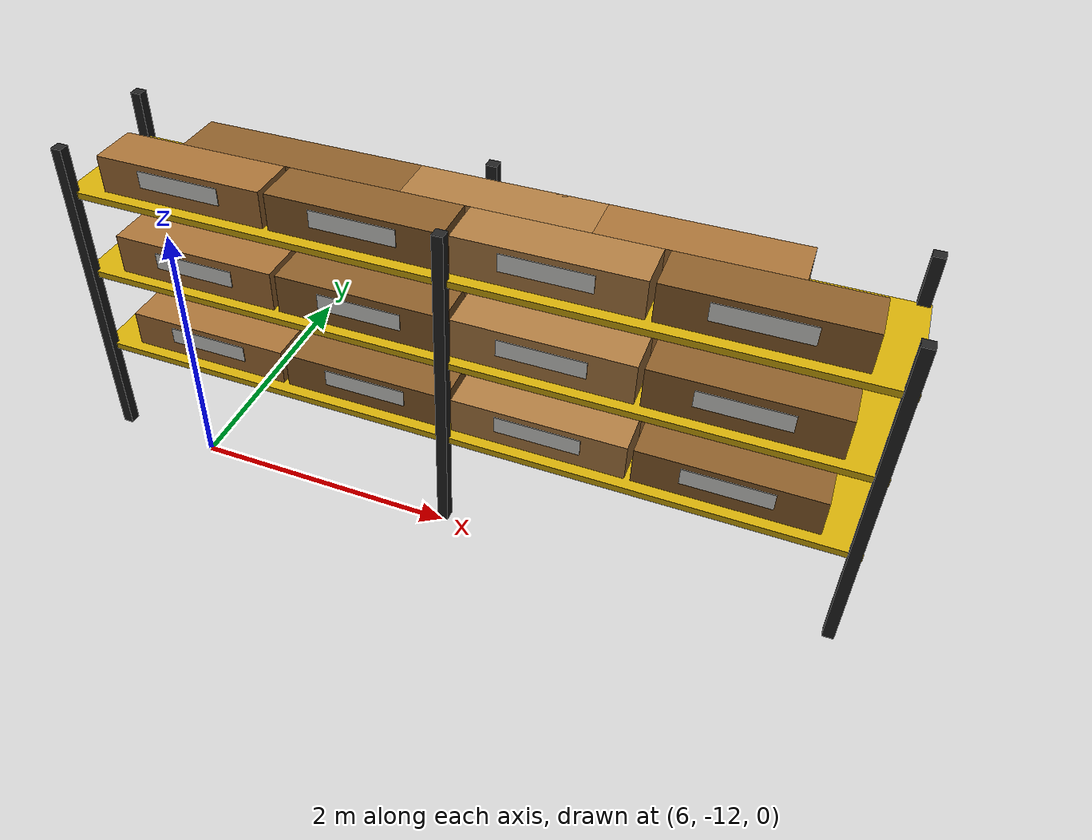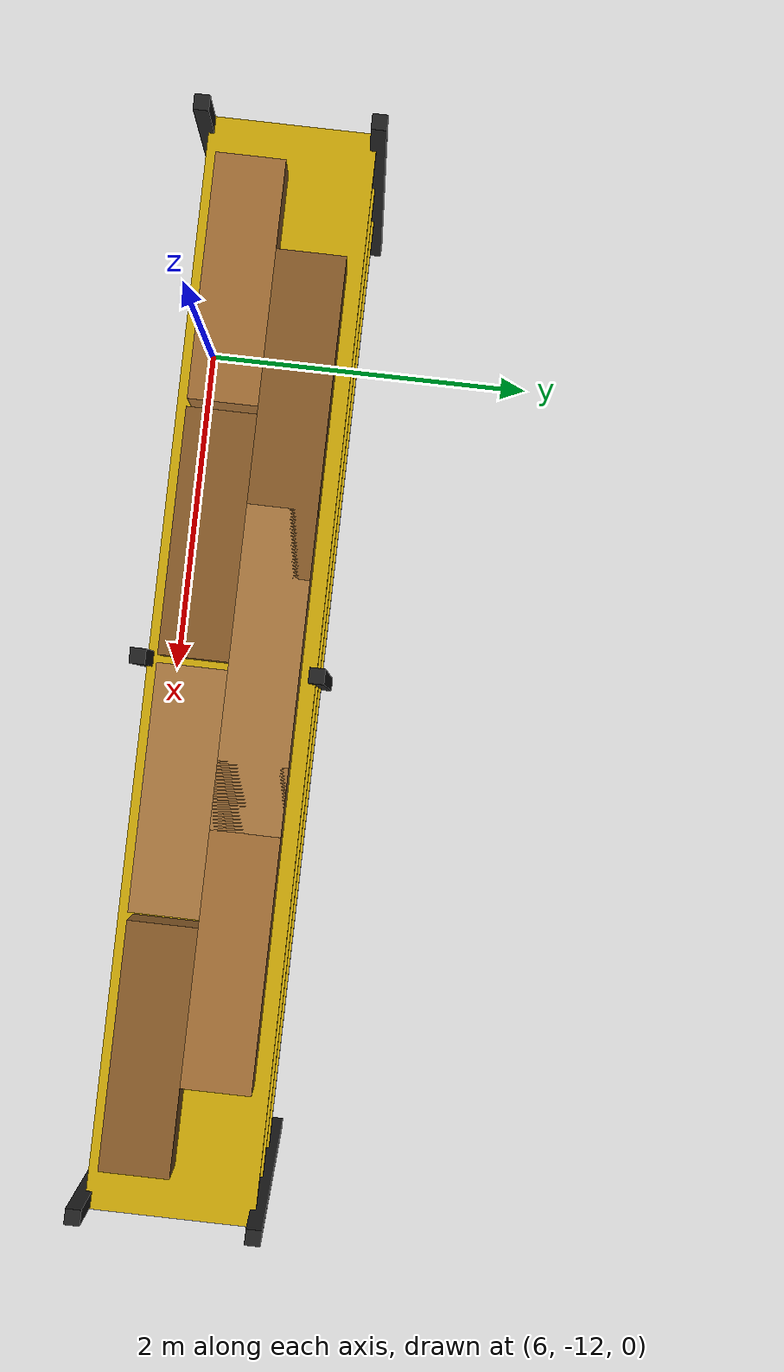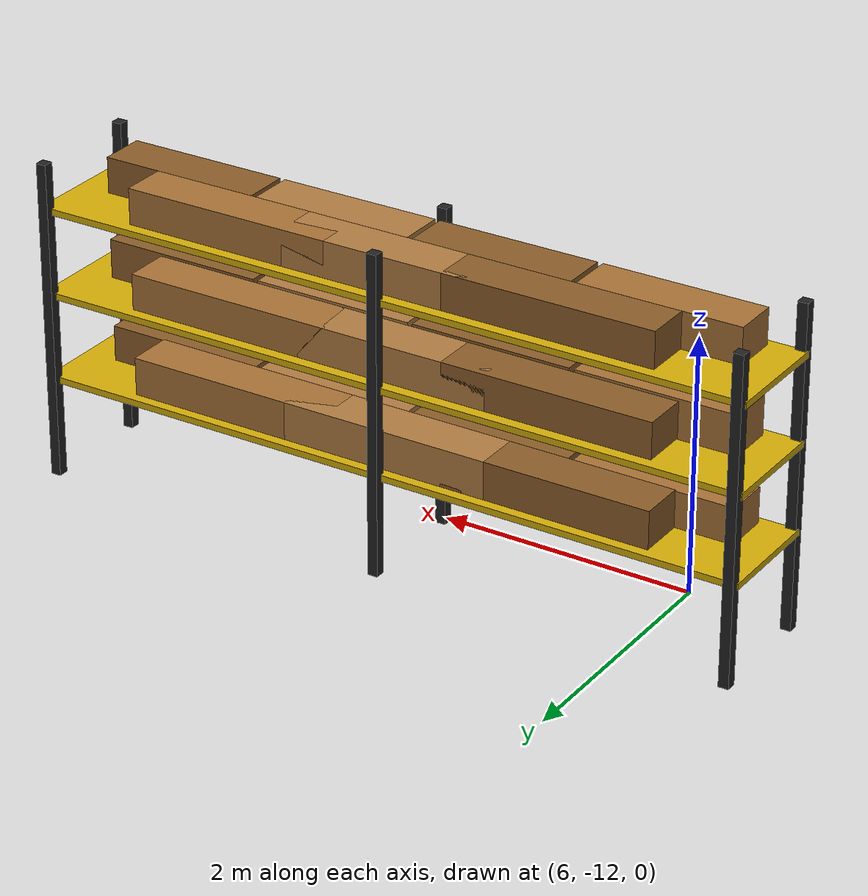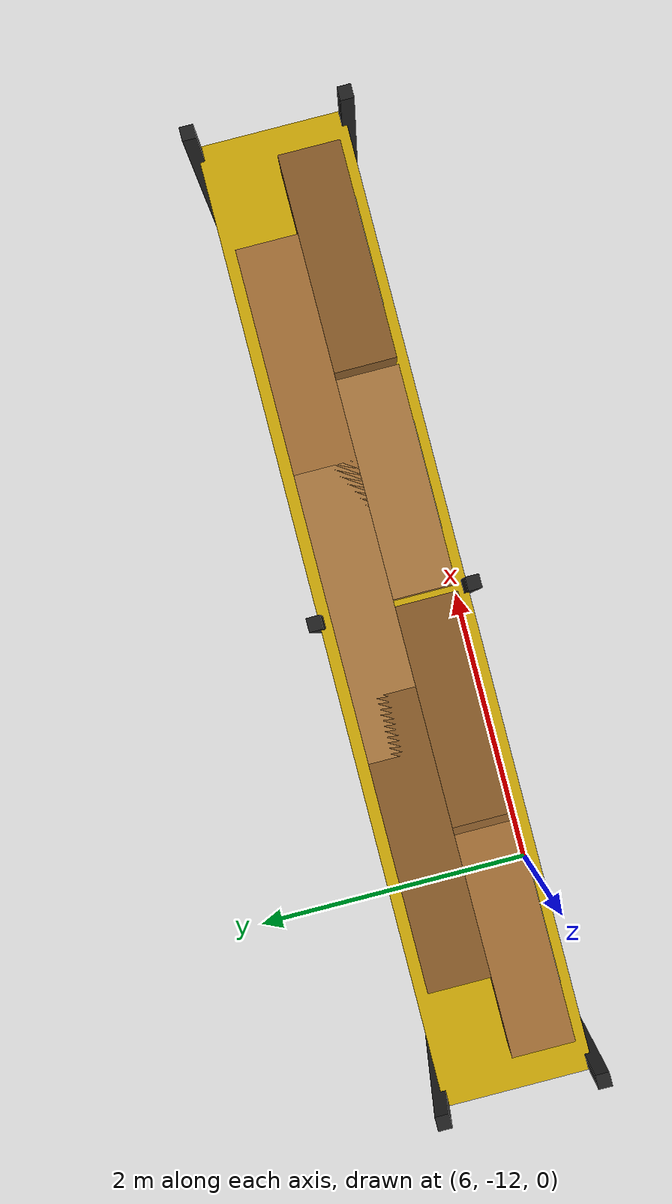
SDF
<sdf version="1.6">
 <world name="aws_industrial_warehouse">
  <model name="shelf_S5">
   <static>true</static>
   <pose>8 -11.5 0 0 0 0</pose>
   <link name="pFL">
    <pose>-2.8 -0.45 1.25 0 0 0</pose>
    <collision name="c">
     <geometry><box><size>0.08 0.08 2.5</size></box></geometry>
     <surface><friction><ode><mu>1.0</mu><mu2>1.0</mu2></ode></friction></surface>
    </collision>
    <visual name="v">
     <geometry><box><size>0.08 0.08 2.5</size></box></geometry>
     <material><ambient>0.10 0.10 0.10 1</ambient><diffuse>0.13 0.13 0.13 1</diffuse></material>
    </visual>
   </link>
   <link name="pBL">
    <pose>-2.8 0.45 1.25 0 0 0</pose>
    <collision name="c">
     <geometry><box><size>0.08 0.08 2.5</size></box></geometry>
     <surface><friction><ode><mu>1.0</mu><mu2>1.0</mu2></ode></friction></surface>
    </collision>
    <visual name="v">
     <geometry><box><size>0.08 0.08 2.5</size></box></geometry>
     <material><ambient>0.10 0.10 0.10 1</ambient><diffuse>0.13 0.13 0.13 1</diffuse></material>
    </visual>
   </link>
   <link name="pFC">
    <pose>0.0 -0.45 1.25 0 0 0</pose>
    <collision name="c">
     <geometry><box><size>0.08 0.08 2.5</size></box></geometry>
     <surface><friction><ode><mu>1.0</mu><mu2>1.0</mu2></ode></friction></surface>
    </collision>
    <visual name="v">
     <geometry><box><size>0.08 0.08 2.5</size></box></geometry>
     <material><ambient>0.10 0.10 0.10 1</ambient><diffuse>0.13 0.13 0.13 1</diffuse></material>
    </visual>
   </link>
   <link name="pBC">
    <pose>0.0 0.45 1.25 0 0 0</pose>
    <collision name="c">
     <geometry><box><size>0.08 0.08 2.5</size></box></geometry>
     <surface><friction><ode><mu>1.0</mu><mu2>1.0</mu2></ode></friction></surface>
    </collision>
    <visual name="v">
     <geometry><box><size>0.08 0.08 2.5</size></box></geometry>
     <material><ambient>0.10 0.10 0.10 1</ambient><diffuse>0.13 0.13 0.13 1</diffuse></material>
    </visual>
   </link>
   <link name="pFR">
    <pose>2.8 -0.45 1.25 0 0 0</pose>
    <collision name="c">
     <geometry><box><size>0.08 0.08 2.5</size></box></geometry>
     <surface><friction><ode><mu>1.0</mu><mu2>1.0</mu2></ode></friction></surface>
    </collision>
    <visual name="v">
     <geometry><box><size>0.08 0.08 2.5</size></box></geometry>
     <material><ambient>0.10 0.10 0.10 1</ambient><diffuse>0.13 0.13 0.13 1</diffuse></material>
    </visual>
   </link>
   <link name="pBR">
    <pose>2.8 0.45 1.25 0 0 0</pose>
    <collision name="c">
     <geometry><box><size>0.08 0.08 2.5</size></box></geometry>
     <surface><friction><ode><mu>1.0</mu><mu2>1.0</mu2></ode></friction></surface>
    </collision>
    <visual name="v">
     <geometry><box><size>0.08 0.08 2.5</size></box></geometry>
     <material><ambient>0.10 0.10 0.10 1</ambient><diffuse>0.13 0.13 0.13 1</diffuse></material>
    </visual>
   </link>
   <link name="deck1">
    <pose>0 0 0.77 0 0 0</pose>
    <collision name="c">
     <geometry><box><size>5.7 0.88 0.05</size></box></geometry>
     <surface><friction><ode><mu>1.0</mu><mu2>1.0</mu2></ode></friction></surface>
    </collision>
    <visual name="v">
     <geometry><box><size>5.7 0.88 0.05</size></box></geometry>
     <material><ambient>0.70 0.55 0.02 1</ambient><diffuse>0.82 0.67 0.03 1</diffuse></material>
    </visual>
   </link>
   <link name="deck2">
    <pose>0 0 1.45 0 0 0</pose>
    <collision name="c">
     <geometry><box><size>5.7 0.88 0.05</size></box></geometry>
     <surface><friction><ode><mu>1.0</mu><mu2>1.0</mu2></ode></friction></surface>
    </collision>
    <visual name="v">
     <geometry><box><size>5.7 0.88 0.05</size></box></geometry>
     <material><ambient>0.70 0.55 0.02 1</ambient><diffuse>0.82 0.67 0.03 1</diffuse></material>
    </visual>
   </link>
   <link name="deck3">
    <pose>0 0 2.12 0 0 0</pose>
    <collision name="c">
     <geometry><box><size>5.7 0.88 0.05</size></box></geometry>
     <surface><friction><ode><mu>1.0</mu><mu2>1.0</mu2></ode></friction></surface>
    </collision>
    <visual name="v">
     <geometry><box><size>5.7 0.88 0.05</size></box></geometry>
     <material><ambient>0.70 0.55 0.02 1</ambient><diffuse>0.82 0.67 0.03 1</diffuse></material>
    </visual>
   </link>
   <link name="bF1_1">
    <pose>-1.95 -0.18 0.94 0 0 0</pose>
    <visual name="v">
     <geometry><box><size>1.26 0.36 0.28</size></box></geometry>
     <material><ambient>0.58 0.38 0.18 1</ambient><diffuse>0.65 0.44 0.21 1</diffuse></material>
    </visual>
   </link>
   <link name="lF1_1">
    <pose>-1.95 -0.363 0.97 0 0 0</pose>
    <visual name="v">
     <geometry><box><size>0.62 0.005 0.13</size></box></geometry>
     <material><ambient>0.76 0.76 0.74 1</ambient><diffuse>0.83 0.83 0.81 1</diffuse></material>
    </visual>
   </link>
   <link name="bF1_2">
    <pose>-0.65 -0.18 0.94 0 0 0</pose>
    <visual name="v">
     <geometry><box><size>1.26 0.36 0.28</size></box></geometry>
     <material><ambient>0.48 0.30 0.12 1</ambient><diffuse>0.54 0.36 0.16 1</diffuse></material>
    </visual>
   </link>
   <link name="lF1_2">
    <pose>-0.65 -0.363 0.97 0 0 0</pose>
    <visual name="v">
     <geometry><box><size>0.62 0.005 0.13</size></box></geometry>
     <material><ambient>0.76 0.76 0.74 1</ambient><diffuse>0.83 0.83 0.81 1</diffuse></material>
    </visual>
   </link>
   <link name="bF1_3">
    <pose>0.65 -0.18 0.94 0 0 0</pose>
    <visual name="v">
     <geometry><box><size>1.26 0.36 0.28</size></box></geometry>
     <material><ambient>0.62 0.43 0.22 1</ambient><diffuse>0.68 0.48 0.25 1</diffuse></material>
    </visual>
   </link>
   <link name="lF1_3">
    <pose>0.65 -0.363 0.97 0 0 0</pose>
    <visual name="v">
     <geometry><box><size>0.62 0.005 0.13</size></box></geometry>
     <material><ambient>0.76 0.76 0.74 1</ambient><diffuse>0.83 0.83 0.81 1</diffuse></material>
    </visual>
   </link>
   <link name="bF1_4">
    <pose>1.95 -0.18 0.94 0 0 0</pose>
    <visual name="v">
     <geometry><box><size>1.26 0.36 0.28</size></box></geometry>
     <material><ambient>0.48 0.30 0.12 1</ambient><diffuse>0.54 0.36 0.16 1</diffuse></material>
    </visual>
   </link>
   <link name="lF1_4">
    <pose>1.95 -0.363 0.97 0 0 0</pose>
    <visual name="v">
     <geometry><box><size>0.62 0.005 0.13</size></box></geometry>
     <material><ambient>0.76 0.76 0.74 1</ambient><diffuse>0.83 0.83 0.81 1</diffuse></material>
    </visual>
   </link>
   <link name="bB1_1">
    <pose>-1.3 0.18 0.94 0 0 0</pose>
    <visual name="v">
     <geometry><box><size>1.65 0.36 0.3</size></box></geometry>
     <material><ambient>0.48 0.30 0.12 1</ambient><diffuse>0.54 0.36 0.16 1</diffuse></material>
    </visual>
   </link>
   <link name="bB1_2">
    <pose>0.0 0.18 0.94 0 0 0</pose>
    <visual name="v">
     <geometry><box><size>1.65 0.36 0.3</size></box></geometry>
     <material><ambient>0.62 0.43 0.22 1</ambient><diffuse>0.68 0.48 0.25 1</diffuse></material>
    </visual>
   </link>
   <link name="bB1_3">
    <pose>1.3 0.18 0.94 0 0 0</pose>
    <visual name="v">
     <geometry><box><size>1.65 0.36 0.3</size></box></geometry>
     <material><ambient>0.58 0.38 0.18 1</ambient><diffuse>0.65 0.44 0.21 1</diffuse></material>
    </visual>
   </link>
   <link name="bF2_1">
    <pose>-1.95 -0.18 1.62 0 0 0</pose>
    <visual name="v">
     <geometry><box><size>1.26 0.36 0.32</size></box></geometry>
     <material><ambient>0.58 0.38 0.18 1</ambient><diffuse>0.65 0.44 0.21 1</diffuse></material>
    </visual>
   </link>
   <link name="lF2_1">
    <pose>-1.95 -0.363 1.6500000000000001 0 0 0</pose>
    <visual name="v">
     <geometry><box><size>0.62 0.005 0.13</size></box></geometry>
     <material><ambient>0.76 0.76 0.74 1</ambient><diffuse>0.83 0.83 0.81 1</diffuse></material>
    </visual>
   </link>
   <link name="bF2_2">
    <pose>-0.65 -0.18 1.62 0 0 0</pose>
    <visual name="v">
     <geometry><box><size>1.26 0.36 0.32</size></box></geometry>
     <material><ambient>0.48 0.30 0.12 1</ambient><diffuse>0.54 0.36 0.16 1</diffuse></material>
    </visual>
   </link>
   <link name="lF2_2">
    <pose>-0.65 -0.363 1.6500000000000001 0 0 0</pose>
    <visual name="v">
     <geometry><box><size>0.62 0.005 0.13</size></box></geometry>
     <material><ambient>0.76 0.76 0.74 1</ambient><diffuse>0.83 0.83 0.81 1</diffuse></material>
    </visual>
   </link>
   <link name="bF2_3">
    <pose>0.65 -0.18 1.62 0 0 0</pose>
    <visual name="v">
     <geometry><box><size>1.26 0.36 0.32</size></box></geometry>
     <material><ambient>0.62 0.43 0.22 1</ambient><diffuse>0.68 0.48 0.25 1</diffuse></material>
    </visual>
   </link>
   <link name="lF2_3">
    <pose>0.65 -0.363 1.6500000000000001 0 0 0</pose>
    <visual name="v">
     <geometry><box><size>0.62 0.005 0.13</size></box></geometry>
     <material><ambient>0.76 0.76 0.74 1</ambient><diffuse>0.83 0.83 0.81 1</diffuse></material>
    </visual>
   </link>
   <link name="bF2_4">
    <pose>1.95 -0.18 1.62 0 0 0</pose>
    <visual name="v">
     <geometry><box><size>1.26 0.36 0.32</size></box></geometry>
     <material><ambient>0.48 0.30 0.12 1</ambient><diffuse>0.54 0.36 0.16 1</diffuse></material>
    </visual>
   </link>
   <link name="lF2_4">
    <pose>1.95 -0.363 1.6500000000000001 0 0 0</pose>
    <visual name="v">
     <geometry><box><size>0.62 0.005 0.13</size></box></geometry>
     <material><ambient>0.76 0.76 0.74 1</ambient><diffuse>0.83 0.83 0.81 1</diffuse></material>
    </visual>
   </link>
   <link name="bB2_1">
    <pose>-1.3 0.18 1.62 0 0 0</pose>
    <visual name="v">
     <geometry><box><size>1.65 0.36 0.28</size></box></geometry>
     <material><ambient>0.48 0.30 0.12 1</ambient><diffuse>0.54 0.36 0.16 1</diffuse></material>
    </visual>
   </link>
   <link name="bB2_2">
    <pose>0.0 0.18 1.62 0 0 0</pose>
    <visual name="v">
     <geometry><box><size>1.65 0.36 0.28</size></box></geometry>
     <material><ambient>0.62 0.43 0.22 1</ambient><diffuse>0.68 0.48 0.25 1</diffuse></material>
    </visual>
   </link>
   <link name="bB2_3">
    <pose>1.3 0.18 1.62 0 0 0</pose>
    <visual name="v">
     <geometry><box><size>1.65 0.36 0.28</size></box></geometry>
     <material><ambient>0.58 0.38 0.18 1</ambient><diffuse>0.65 0.44 0.21 1</diffuse></material>
    </visual>
   </link>
   <link name="bF3_1">
    <pose>-1.95 -0.18 2.29 0 0 0</pose>
    <visual name="v">
     <geometry><box><size>1.26 0.36 0.28</size></box></geometry>
     <material><ambient>0.58 0.38 0.18 1</ambient><diffuse>0.65 0.44 0.21 1</diffuse></material>
    </visual>
   </link>
   <link name="lF3_1">
    <pose>-1.95 -0.363 2.32 0 0 0</pose>
    <visual name="v">
     <geometry><box><size>0.62 0.005 0.13</size></box></geometry>
     <material><ambient>0.76 0.76 0.74 1</ambient><diffuse>0.83 0.83 0.81 1</diffuse></material>
    </visual>
   </link>
   <link name="bF3_2">
    <pose>-0.65 -0.18 2.29 0 0 0</pose>
    <visual name="v">
     <geometry><box><size>1.26 0.36 0.28</size></box></geometry>
     <material><ambient>0.48 0.30 0.12 1</ambient><diffuse>0.54 0.36 0.16 1</diffuse></material>
    </visual>
   </link>
   <link name="lF3_2">
    <pose>-0.65 -0.363 2.32 0 0 0</pose>
    <visual name="v">
     <geometry><box><size>0.62 0.005 0.13</size></box></geometry>
     <material><ambient>0.76 0.76 0.74 1</ambient><diffuse>0.83 0.83 0.81 1</diffuse></material>
    </visual>
   </link>
   <link name="bF3_3">
    <pose>0.65 -0.18 2.29 0 0 0</pose>
    <visual name="v">
     <geometry><box><size>1.26 0.36 0.28</size></box></geometry>
     <material><ambient>0.62 0.43 0.22 1</ambient><diffuse>0.68 0.48 0.25 1</diffuse></material>
    </visual>
   </link>
   <link name="lF3_3">
    <pose>0.65 -0.363 2.32 0 0 0</pose>
    <visual name="v">
     <geometry><box><size>0.62 0.005 0.13</size></box></geometry>
     <material><ambient>0.76 0.76 0.74 1</ambient><diffuse>0.83 0.83 0.81 1</diffuse></material>
    </visual>
   </link>
   <link name="bF3_4">
    <pose>1.95 -0.18 2.29 0 0 0</pose>
    <visual name="v">
     <geometry><box><size>1.26 0.36 0.28</size></box></geometry>
     <material><ambient>0.48 0.30 0.12 1</ambient><diffuse>0.54 0.36 0.16 1</diffuse></material>
    </visual>
   </link>
   <link name="lF3_4">
    <pose>1.95 -0.363 2.32 0 0 0</pose>
    <visual name="v">
     <geometry><box><size>0.62 0.005 0.13</size></box></geometry>
     <material><ambient>0.76 0.76 0.74 1</ambient><diffuse>0.83 0.83 0.81 1</diffuse></material>
    </visual>
   </link>
   <link name="bB3_1">
    <pose>-1.3 0.18 2.29 0 0 0</pose>
    <visual name="v">
     <geometry><box><size>1.65 0.36 0.28</size></box></geometry>
     <material><ambient>0.48 0.30 0.12 1</ambient><diffuse>0.54 0.36 0.16 1</diffuse></material>
    </visual>
   </link>
   <link name="bB3_2">
    <pose>0.0 0.18 2.29 0 0 0</pose>
    <visual name="v">
     <geometry><box><size>1.65 0.36 0.28</size></box></geometry>
     <material><ambient>0.62 0.43 0.22 1</ambient><diffuse>0.68 0.48 0.25 1</diffuse></material>
    </visual>
   </link>
   <link name="bB3_3">
    <pose>1.3 0.18 2.29 0 0 0</pose>
    <visual name="v">
     <geometry><box><size>1.65 0.36 0.28</size></box></geometry>
     <material><ambient>0.58 0.38 0.18 1</ambient><diffuse>0.65 0.44 0.21 1</diffuse></material>
    </visual>
   </link>
  </model>
 </world>
</sdf>
